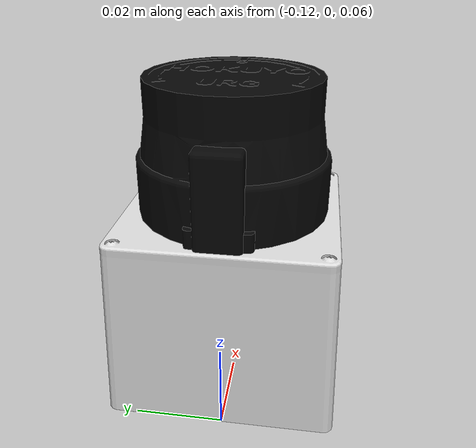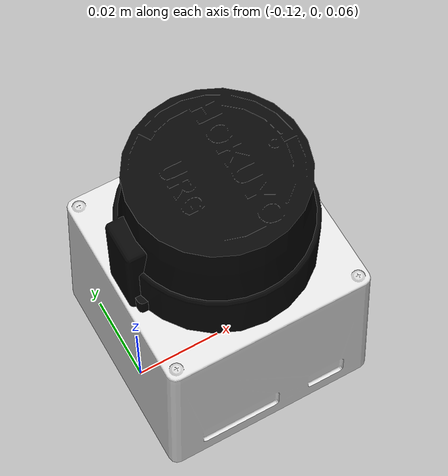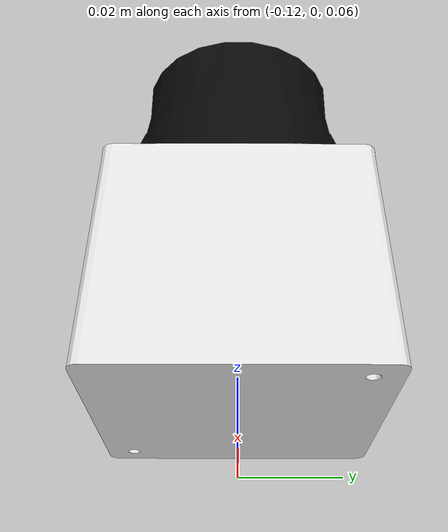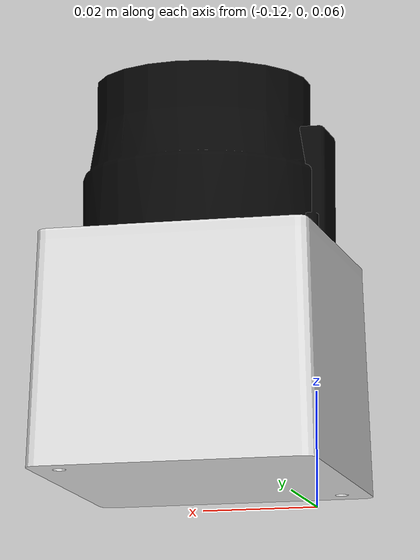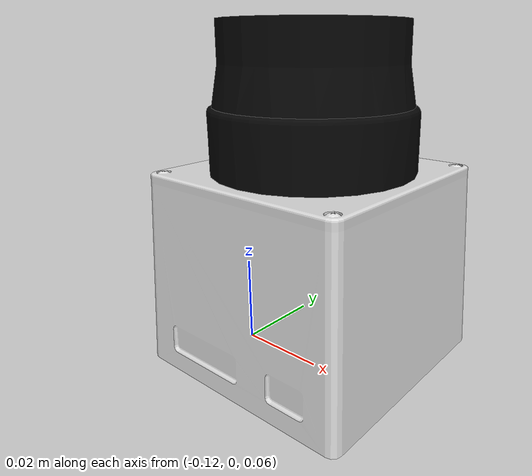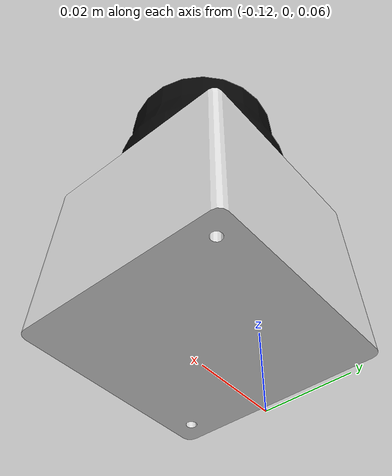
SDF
<?xml version="1.0" ?>
<sdf version="1.0">
  <model name="agh_lidar">
    <link name="link">
      <pose>-0.1 0 0.1 0 0 0</pose>

      <collision name="collision">
        <pose>0 0 0 0 0 0</pose>
        <geometry>
          <box>
            <size>0.1 0.05 0.1</size>
          </box>
        </geometry>
      </collision>

      <visual name="visual">
        <pose>0 0 0 0 0 0</pose>
        <geometry>
          <mesh>
            <uri>model://hokuyo/meshes/hokuyo.dae</uri>
          </mesh>
        </geometry>
      </visual>

      <inertial>
          <mass>0.00001</mass>
          <inertia>
             <ixx>0.000001</ixx>
             <ixy>0</ixy>
             <ixz>0</ixz>
             <iyy>0.000001</iyy>
             <iyz>0</iyz>
             <izz>0.000001</izz>
             <!-- low intertia necessary to avoid not disturb the drone -->
          </inertia>
        </inertial>

        <sensor type="ray" name="laser">
          <pose>0 0 0 0 0 0</pose>
          <visualize>false</visualize>
          <update_rate>10</update_rate>
          <ray>
            <scan>
              <horizontal>
                <samples>1024</samples>
                <resolution>1</resolution>
                <min_angle>-3.141593</min_angle>
                <max_angle>3.141593</max_angle>
              </horizontal>
            </scan>
            <range>
              <min>0.1</min>
              <max>7</max>
              <resolution>0.1</resolution>
            </range>
          </ray>
          <plugin name="hokuyo_node" filename="libgazebo_ros_laser.so">
            <robotNamespace></robotNamespace>
            <topicName>/laser/scan</topicName>
            <frameName>/laser_frame</frameName>
          </plugin>
        </sensor>
      </link>
  </model>
</sdf>
